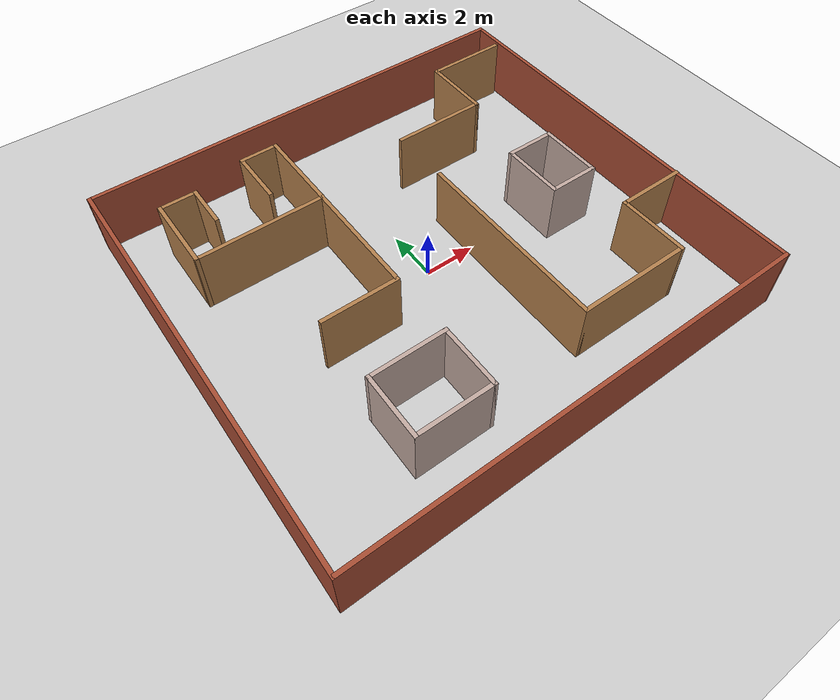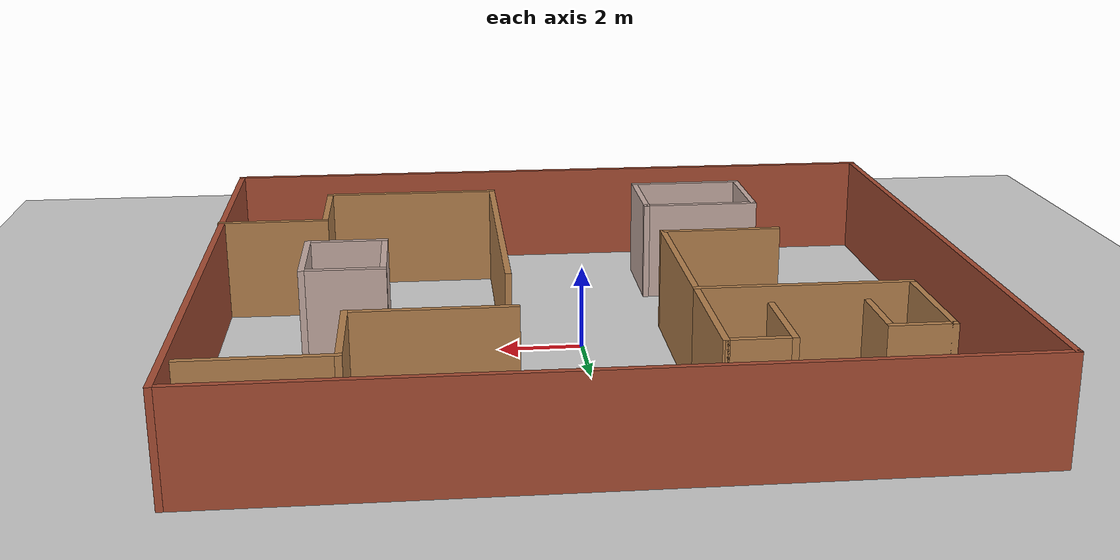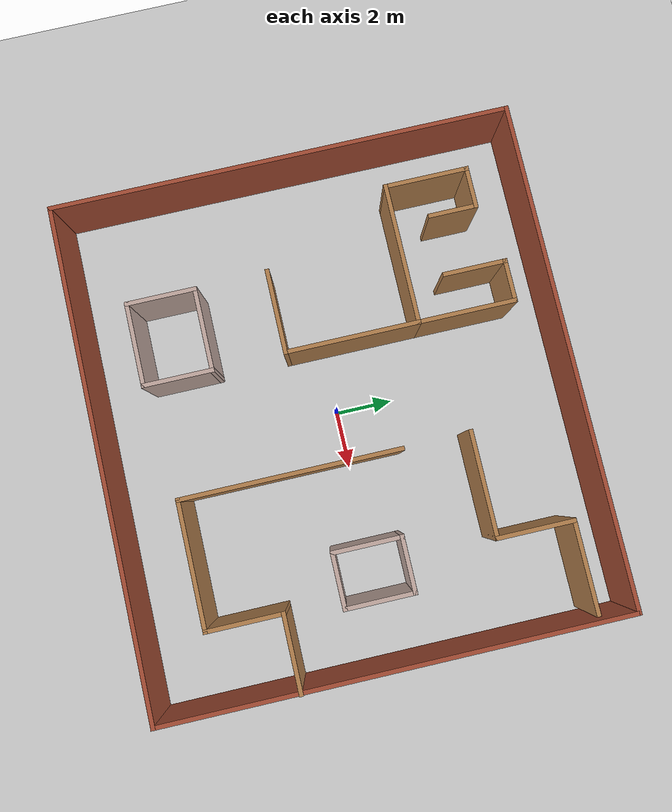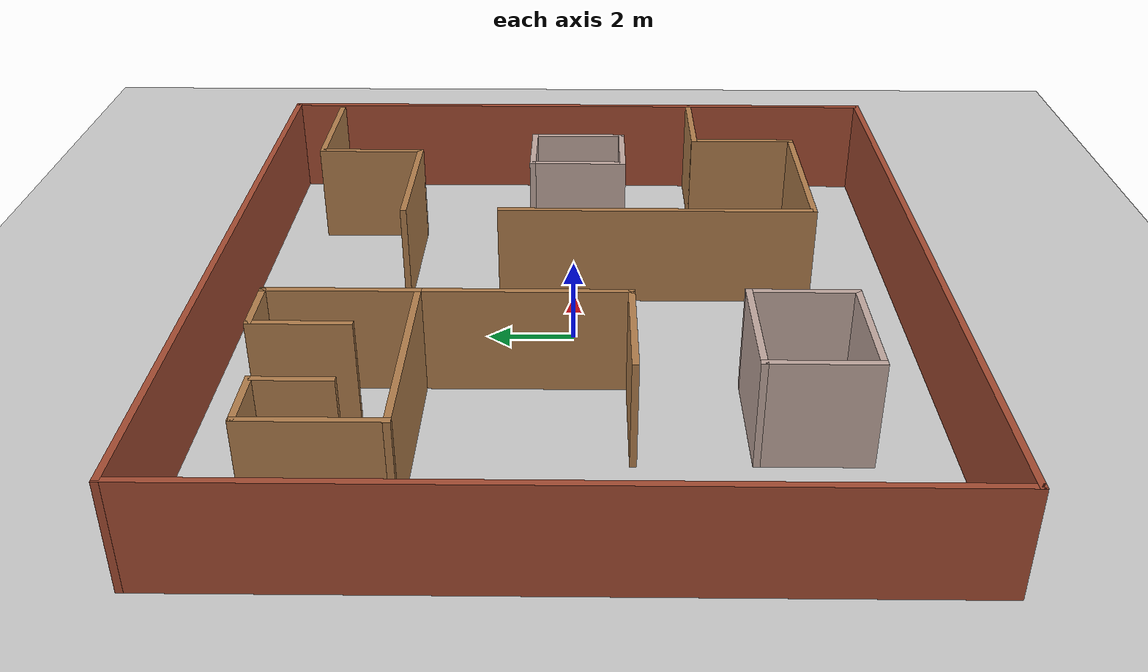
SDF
<?xml version="1.0"?>
<sdf version="1.7">
  <world name="default">

    <!-- Physics Settings (optional) -->
    <physics type="ode">
      <gravity>0 0 -9.8</gravity>
      <max_step_size>0.001</max_step_size>
    </physics>

    <!-- Ground Plane -->
    <model name="ground_plane">
      <pose>0 0 0 0 0 0</pose>
      <link name="link">
        <collision name="collision">
          <geometry>
            <plane>
              <normal>0 0 1</normal>
              <size>100 100</size>
            </plane>
          </geometry>
        </collision>
        <visual name="visual">
          <geometry>
            <plane>
              <normal>0 0 1</normal>
              <size>100 100</size>
            </plane>
          </geometry>
          <material>
            <ambient>0.3 0.3 0.3 1.0</ambient>
            <diffuse>0.8 0.8 0.8 1.0</diffuse>
            <specular>0.0 0.0 0.0 1.0</specular>
          </material>
        </visual>
      </link>
    </model>

    <!-- Add your building model -->
    <include>
      <uri>model://map4</uri> <!-- Reference to the model in Gazebo's model database -->
      <pose>0 0 0 0 0 0</pose> <!-- Position of the model in the world -->
    </include>

  </world>
</sdf>

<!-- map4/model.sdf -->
<sdf version='1.7'>
  <model name='map4'>
    <pose>-0.350802 -0.697163 0 0 -0 0</pose>
    <link name='Wall_10'>
      <collision name='Wall_10_Collision'>
        <geometry>
          <box>
            <size>16.25 0.15 2.5</size>
          </box>
        </geometry>
        <pose>0 0 1.25 0 -0 0</pose>
      </collision>
      <visual name='Wall_10_Visual'>
        <pose>0 0 1.25 0 -0 0</pose>
        <geometry>
          <box>
            <size>16.25 0.15 2.5</size>
          </box>
        </geometry>
        <material>
          <script>
            <uri>file://media/materials/scripts/gazebo.material</uri>
            <name>Gazebo/Bricks</name>
          </script>
          <ambient>1 1 1 1</ambient>
        </material>
        <meta>
          <layer>0</layer>
        </meta>
      </visual>
      <pose>8.78502 0 0 0 -0 1.5708</pose>
    </link>
    <link name='Wall_11'>
      <collision name='Wall_11_Collision'>
        <geometry>
          <box>
            <size>17.75 0.15 2.5</size>
          </box>
        </geometry>
        <pose>0 0 1.25 0 -0 0</pose>
      </collision>
      <visual name='Wall_11_Visual'>
        <pose>0 0 1.25 0 -0 0</pose>
        <geometry>
          <box>
            <size>17.75 0.15 2.5</size>
          </box>
        </geometry>
        <material>
          <script>
            <uri>file://media/materials/scripts/gazebo.material</uri>
            <name>Gazebo/Bricks</name>
          </script>
          <ambient>1 1 1 1</ambient>
        </material>
        <meta>
          <layer>0</layer>
        </meta>
      </visual>
      <pose>-0.014976 8.05 0 0 -0 3.14159</pose>
    </link>
    <link name='Wall_13'>
      <collision name='Wall_13_Collision'>
        <geometry>
          <box>
            <size>4.75 0.15 2.5</size>
          </box>
        </geometry>
        <pose>0 0 1.25 0 -0 0</pose>
      </collision>
      <visual name='Wall_13_Visual'>
        <pose>0 0 1.25 0 -0 0</pose>
        <geometry>
          <box>
            <size>4.75 0.15 2.5</size>
          </box>
        </geometry>
        <material>
          <script>
            <uri>file://media/materials/scripts/gazebo.material</uri>
            <name>Gazebo/Wood</name>
          </script>
          <ambient>1 1 1 1</ambient>
        </material>
        <meta>
          <layer>0</layer>
        </meta>
      </visual>
      <pose>-2.15975 1.02508 0 0 -0 -1.5708</pose>
    </link>
    <link name='Wall_14'>
      <collision name='Wall_14_Collision'>
        <geometry>
          <box>
            <size>3 0.15 2.5</size>
          </box>
        </geometry>
        <pose>0 0 1.25 0 -0 0</pose>
      </collision>
      <visual name='Wall_14_Visual'>
        <pose>0 0 1.25 0 -0 0</pose>
        <geometry>
          <box>
            <size>3 0.15 2.5</size>
          </box>
        </geometry>
        <material>
          <script>
            <uri>file://media/materials/scripts/gazebo.material</uri>
            <name>Gazebo/Wood</name>
          </script>
          <ambient>1 1 1 1</ambient>
        </material>
        <meta>
          <layer>0</layer>
        </meta>
      </visual>
      <pose>-3.58475 -1.27492 0 0 -0 3.14159</pose>
    </link>
    <link name='Wall_16'>
      <collision name='Wall_16_Collision'>
        <geometry>
          <box>
            <size>7.75 0.15 2.5</size>
          </box>
        </geometry>
        <pose>0 0 1.25 0 -0 0</pose>
      </collision>
      <visual name='Wall_16_Visual'>
        <pose>0 0 1.25 0 -0 0</pose>
        <geometry>
          <box>
            <size>7.75 0.15 2.5</size>
          </box>
        </geometry>
        <material>
          <script>
            <uri>file://media/materials/scripts/gazebo.material</uri>
            <name>Gazebo/Wood</name>
          </script>
          <ambient>1 1 1 1</ambient>
        </material>
        <meta>
          <layer>0</layer>
        </meta>
      </visual>
      <pose>1.86498 -2.00154 0 0 -0 -1.5708</pose>
    </link>
    <link name='Wall_17'>
      <collision name='Wall_17_Collision'>
        <geometry>
          <box>
            <size>4.5 0.15 2.5</size>
          </box>
        </geometry>
        <pose>0 0 1.25 0 -0 0</pose>
      </collision>
      <visual name='Wall_17_Visual'>
        <pose>0 0 1.25 0 -0 0</pose>
        <geometry>
          <box>
            <size>4.5 0.15 2.5</size>
          </box>
        </geometry>
        <material>
          <script>
            <uri>file://media/materials/scripts/gazebo.material</uri>
            <name>Gazebo/Wood</name>
          </script>
          <ambient>1 1 1 1</ambient>
        </material>
        <meta>
          <layer>0</layer>
        </meta>
      </visual>
      <pose>4.03998 -5.80154 0 0 -0 0</pose>
    </link>
    <link name='Wall_18'>
      <collision name='Wall_18_Collision'>
        <geometry>
          <box>
            <size>2.75 0.15 2.5</size>
          </box>
        </geometry>
        <pose>0 0 1.25 0 -0 0</pose>
      </collision>
      <visual name='Wall_18_Visual'>
        <pose>0 0 1.25 0 -0 0</pose>
        <geometry>
          <box>
            <size>2.75 0.15 2.5</size>
          </box>
        </geometry>
        <material>
          <script>
            <uri>file://media/materials/scripts/gazebo.material</uri>
            <name>Gazebo/Wood</name>
          </script>
          <ambient>1 1 1 1</ambient>
        </material>
        <meta>
          <layer>0</layer>
        </meta>
      </visual>
      <pose>6.21498 -4.50154 0 0 -0 1.5708</pose>
    </link>
    <link name='Wall_19'>
      <collision name='Wall_19_Collision'>
        <geometry>
          <box>
            <size>2.75 0.15 2.5</size>
          </box>
        </geometry>
        <pose>0 0 1.25 0 -0 0</pose>
      </collision>
      <visual name='Wall_19_Visual'>
        <pose>0 0 1.25 0 -0 0</pose>
        <geometry>
          <box>
            <size>2.75 0.15 2.5</size>
          </box>
        </geometry>
        <material>
          <script>
            <uri>file://media/materials/scripts/gazebo.material</uri>
            <name>Gazebo/Wood</name>
          </script>
          <ambient>1 1 1 1</ambient>
        </material>
        <meta>
          <layer>0</layer>
        </meta>
      </visual>
      <pose>7.51498 -3.20154 0 0 -0 0</pose>
    </link>
    <link name='Wall_21'>
      <collision name='Wall_21_Collision'>
        <geometry>
          <box>
            <size>3 0.15 2.5</size>
          </box>
        </geometry>
        <pose>0 0 1.25 0 -0 0</pose>
      </collision>
      <visual name='Wall_21_Visual'>
        <pose>0 0 1.25 0 -0 0</pose>
        <geometry>
          <box>
            <size>3 0.15 2.5</size>
          </box>
        </geometry>
        <material>
          <script>
            <uri>file://media/materials/scripts/gazebo.material</uri>
            <name>Gazebo/Grey</name>
          </script>
          <ambient>0.760784 0.662745 0.627451 1</ambient>
        </material>
        <meta>
          <layer>0</layer>
        </meta>
      </visual>
      <pose>-3.53849 -3.79915 0 0 -0 3.14159</pose>
    </link>
    <link name='Wall_22'>
      <collision name='Wall_22_Collision'>
        <geometry>
          <box>
            <size>2.5 0.15 2.5</size>
          </box>
        </geometry>
        <pose>0 0 1.25 0 -0 0</pose>
      </collision>
      <visual name='Wall_22_Visual'>
        <pose>0 0 1.25 0 -0 0</pose>
        <geometry>
          <box>
            <size>2.5 0.15 2.5</size>
          </box>
        </geometry>
        <material>
          <script>
            <uri>file://media/materials/scripts/gazebo.material</uri>
            <name>Gazebo/Grey</name>
          </script>
          <ambient>0.760784 0.662745 0.627451 1</ambient>
        </material>
        <meta>
          <layer>0</layer>
        </meta>
      </visual>
      <pose>-4.96349 -4.97415 0 0 -0 -1.5708</pose>
    </link>
    <link name='Wall_23'>
      <collision name='Wall_23_Collision'>
        <geometry>
          <box>
            <size>3 0.15 2.5</size>
          </box>
        </geometry>
        <pose>0 0 1.25 0 -0 0</pose>
      </collision>
      <visual name='Wall_23_Visual'>
        <pose>0 0 1.25 0 -0 0</pose>
        <geometry>
          <box>
            <size>3 0.15 2.5</size>
          </box>
        </geometry>
        <material>
          <script>
            <uri>file://media/materials/scripts/gazebo.material</uri>
            <name>Gazebo/Grey</name>
          </script>
          <ambient>0.760784 0.662745 0.627451 1</ambient>
        </material>
        <meta>
          <layer>0</layer>
        </meta>
      </visual>
      <pose>-3.53849 -6.14915 0 0 -0 0</pose>
    </link>
    <link name='Wall_24'>
      <collision name='Wall_24_Collision'>
        <geometry>
          <box>
            <size>2.5 0.15 2.5</size>
          </box>
        </geometry>
        <pose>0 0 1.25 0 -0 0</pose>
      </collision>
      <visual name='Wall_24_Visual'>
        <pose>0 0 1.25 0 -0 0</pose>
        <geometry>
          <box>
            <size>2.5 0.15 2.5</size>
          </box>
        </geometry>
        <material>
          <script>
            <uri>file://media/materials/scripts/gazebo.material</uri>
            <name>Gazebo/Grey</name>
          </script>
          <ambient>0.760784 0.662745 0.627451 1</ambient>
        </material>
        <meta>
          <layer>0</layer>
        </meta>
      </visual>
      <pose>-2.11349 -4.97415 0 0 -0 1.5708</pose>
    </link>
    <link name='Wall_26'>
      <collision name='Wall_26_Collision'>
        <geometry>
          <box>
            <size>5 0.15 2.5</size>
          </box>
        </geometry>
        <pose>0 0 1.25 0 -0 0</pose>
      </collision>
      <visual name='Wall_26_Visual'>
        <pose>0 0 1.25 0 -0 0</pose>
        <geometry>
          <box>
            <size>5 0.15 2.5</size>
          </box>
        </geometry>
        <material>
          <script>
            <uri>file://media/materials/scripts/gazebo.material</uri>
            <name>Gazebo/Wood</name>
          </script>
          <ambient>1 1 1 1</ambient>
        </material>
        <meta>
          <layer>0</layer>
        </meta>
      </visual>
      <pose>-4.58475 3.32508 0 0 -0 3.14159</pose>
    </link>
    <link name='Wall_27'>
      <collision name='Wall_27_Collision'>
        <geometry>
          <box>
            <size>3 0.15 2.5</size>
          </box>
        </geometry>
        <pose>0 0 1.25 0 -0 0</pose>
      </collision>
      <visual name='Wall_27_Visual'>
        <pose>0 0 1.25 0 -0 0</pose>
        <geometry>
          <box>
            <size>3 0.15 2.5</size>
          </box>
        </geometry>
        <material>
          <script>
            <uri>file://media/materials/scripts/gazebo.material</uri>
            <name>Gazebo/Wood</name>
          </script>
          <ambient>1 1 1 1</ambient>
        </material>
        <meta>
          <layer>0</layer>
        </meta>
      </visual>
      <pose>-7.00975 4.75008 0 0 -0 1.5708</pose>
    </link>
    <link name='Wall_28'>
      <collision name='Wall_28_Collision'>
        <geometry>
          <box>
            <size>1.5 0.15 2.5</size>
          </box>
        </geometry>
        <pose>0 0 1.25 0 -0 0</pose>
      </collision>
      <visual name='Wall_28_Visual'>
        <pose>0 0 1.25 0 -0 0</pose>
        <geometry>
          <box>
            <size>1.5 0.15 2.5</size>
          </box>
        </geometry>
        <material>
          <script>
            <uri>file://media/materials/scripts/gazebo.material</uri>
            <name>Gazebo/Wood</name>
          </script>
          <ambient>1 1 1 1</ambient>
        </material>
        <meta>
          <layer>0</layer>
        </meta>
      </visual>
      <pose>-6.33475 6.17508 0 0 -0 0</pose>
    </link>
    <link name='Wall_29'>
      <collision name='Wall_29_Collision'>
        <geometry>
          <box>
            <size>1.75 0.15 2.5</size>
          </box>
        </geometry>
        <pose>0 0 1.25 0 -0 0</pose>
      </collision>
      <visual name='Wall_29_Visual'>
        <pose>0 0 1.25 0 -0 0</pose>
        <geometry>
          <box>
            <size>1.75 0.15 2.5</size>
          </box>
        </geometry>
        <material>
          <script>
            <uri>file://media/materials/scripts/gazebo.material</uri>
            <name>Gazebo/Wood</name>
          </script>
          <ambient>1 1 1 1</ambient>
        </material>
        <meta>
          <layer>0</layer>
        </meta>
      </visual>
      <pose>-5.65975 5.37508 0 0 -0 -1.5708</pose>
    </link>
    <link name='Wall_31'>
      <collision name='Wall_31_Collision'>
        <geometry>
          <box>
            <size>2.25 0.15 2.5</size>
          </box>
        </geometry>
        <pose>0 0 1.25 0 -0 0</pose>
      </collision>
      <visual name='Wall_31_Visual'>
        <pose>0 0 1.25 0 -0 0</pose>
        <geometry>
          <box>
            <size>2.25 0.15 2.5</size>
          </box>
        </geometry>
        <material>
          <script>
            <uri>file://media/materials/scripts/gazebo.material</uri>
            <name>Gazebo/Wood</name>
          </script>
          <ambient>1 1 1 1</ambient>
        </material>
        <meta>
          <layer>0</layer>
        </meta>
      </visual>
      <pose>-3.55975 5.62508 0 0 -0 1.5708</pose>
    </link>
    <link name='Wall_32'>
      <collision name='Wall_32_Collision'>
        <geometry>
          <box>
            <size>1.5 0.15 2.5</size>
          </box>
        </geometry>
        <pose>0 0 1.25 0 -0 0</pose>
      </collision>
      <visual name='Wall_32_Visual'>
        <pose>0 0 1.25 0 -0 0</pose>
        <geometry>
          <box>
            <size>1.5 0.15 2.5</size>
          </box>
        </geometry>
        <material>
          <script>
            <uri>file://media/materials/scripts/gazebo.material</uri>
            <name>Gazebo/Wood</name>
          </script>
          <ambient>1 1 1 1</ambient>
        </material>
        <meta>
          <layer>0</layer>
        </meta>
      </visual>
      <pose>-2.88475 6.67508 0 0 -0 0</pose>
    </link>
    <link name='Wall_34'>
      <collision name='Wall_34_Collision'>
        <geometry>
          <box>
            <size>3.5 0.15 2.5</size>
          </box>
        </geometry>
        <pose>0 0 1.25 0 -0 0</pose>
      </collision>
      <visual name='Wall_34_Visual'>
        <pose>0 0 1.25 0 -0 0</pose>
        <geometry>
          <box>
            <size>3.5 0.15 2.5</size>
          </box>
        </geometry>
        <material>
          <script>
            <uri>file://media/materials/scripts/gazebo.material</uri>
            <name>Gazebo/Wood</name>
          </script>
          <ambient>1 1 1 1</ambient>
        </material>
        <meta>
          <layer>0</layer>
        </meta>
      </visual>
      <pose>-2.15975 5.00008 0 0 -0 1.5708</pose>
    </link>
    <link name='Wall_37'>
      <collision name='Wall_37_Collision'>
        <geometry>
          <box>
            <size>3.75 0.15 2.5</size>
          </box>
        </geometry>
        <pose>0 0 1.25 0 -0 0</pose>
      </collision>
      <visual name='Wall_37_Visual'>
        <pose>0 0 1.25 0 -0 0</pose>
        <geometry>
          <box>
            <size>3.75 0.15 2.5</size>
          </box>
        </geometry>
        <material>
          <script>
            <uri>file://media/materials/scripts/gazebo.material</uri>
            <name>Gazebo/Wood</name>
          </script>
          <ambient>1 1 1 1</ambient>
        </material>
        <meta>
          <layer>0</layer>
        </meta>
      </visual>
      <pose>3.62514 4.15043 0 0 -0 0</pose>
    </link>
    <link name='Wall_38'>
      <collision name='Wall_38_Collision'>
        <geometry>
          <box>
            <size>2.75 0.15 2.5</size>
          </box>
        </geometry>
        <pose>0 0 1.25 0 -0 0</pose>
      </collision>
      <visual name='Wall_38_Visual'>
        <pose>0 0 1.25 0 -0 0</pose>
        <geometry>
          <box>
            <size>2.75 0.15 2.5</size>
          </box>
        </geometry>
        <material>
          <script>
            <uri>file://media/materials/scripts/gazebo.material</uri>
            <name>Gazebo/Wood</name>
          </script>
          <ambient>1 1 1 1</ambient>
        </material>
        <meta>
          <layer>0</layer>
        </meta>
      </visual>
      <pose>5.42514 5.45043 0 0 -0 1.5708</pose>
    </link>
    <link name='Wall_39'>
      <collision name='Wall_39_Collision'>
        <geometry>
          <box>
            <size>3.25 0.15 2.5</size>
          </box>
        </geometry>
        <pose>0 0 1.25 0 -0 0</pose>
      </collision>
      <visual name='Wall_39_Visual'>
        <pose>0 0 1.25 0 -0 0</pose>
        <geometry>
          <box>
            <size>3.25 0.15 2.5</size>
          </box>
        </geometry>
        <material>
          <script>
            <uri>file://media/materials/scripts/gazebo.material</uri>
            <name>Gazebo/Wood</name>
          </script>
          <ambient>1 1 1 1</ambient>
        </material>
        <meta>
          <layer>0</layer>
        </meta>
      </visual>
      <pose>6.97514 6.75042 0 0 -0 0</pose>
    </link>
    <link name='Wall_41'>
      <collision name='Wall_41_Collision'>
        <geometry>
          <box>
            <size>2.5 0.15 2.5</size>
          </box>
        </geometry>
        <pose>0 0 1.25 0 -0 0</pose>
      </collision>
      <visual name='Wall_41_Visual'>
        <pose>0 0 1.25 0 -0 0</pose>
        <geometry>
          <box>
            <size>2.5 0.15 2.5</size>
          </box>
        </geometry>
        <material>
          <script>
            <uri>file://media/materials/scripts/gazebo.material</uri>
            <name>Gazebo/Grey</name>
          </script>
          <ambient>0.760784 0.662745 0.627451 1</ambient>
        </material>
        <meta>
          <layer>0</layer>
        </meta>
      </visual>
      <pose>4.67625 -0.055047 0 0 -0 -1.5708</pose>
    </link>
    <link name='Wall_42'>
      <collision name='Wall_42_Collision'>
        <geometry>
          <box>
            <size>2 0.15 2.5</size>
          </box>
        </geometry>
        <pose>0 0 1.25 0 -0 0</pose>
      </collision>
      <visual name='Wall_42_Visual'>
        <pose>0 0 1.25 0 -0 0</pose>
        <geometry>
          <box>
            <size>2 0.15 2.5</size>
          </box>
        </geometry>
        <material>
          <script>
            <uri>file://media/materials/scripts/gazebo.material</uri>
            <name>Gazebo/Grey</name>
          </script>
          <ambient>0.760784 0.662745 0.627451 1</ambient>
        </material>
        <meta>
          <layer>0</layer>
        </meta>
      </visual>
      <pose>5.60125 -1.23005 0 0 -0 0</pose>
    </link>
    <link name='Wall_43'>
      <collision name='Wall_43_Collision'>
        <geometry>
          <box>
            <size>2.5 0.15 2.5</size>
          </box>
        </geometry>
        <pose>0 0 1.25 0 -0 0</pose>
      </collision>
      <visual name='Wall_43_Visual'>
        <pose>0 0 1.25 0 -0 0</pose>
        <geometry>
          <box>
            <size>2.5 0.15 2.5</size>
          </box>
        </geometry>
        <material>
          <script>
            <uri>file://media/materials/scripts/gazebo.material</uri>
            <name>Gazebo/Grey</name>
          </script>
          <ambient>0.760784 0.662745 0.627451 1</ambient>
        </material>
        <meta>
          <layer>0</layer>
        </meta>
      </visual>
      <pose>6.52625 -0.055047 0 0 -0 1.5708</pose>
    </link>
    <link name='Wall_44'>
      <collision name='Wall_44_Collision'>
        <geometry>
          <box>
            <size>2 0.15 2.5</size>
          </box>
        </geometry>
        <pose>0 0 1.25 0 -0 0</pose>
      </collision>
      <visual name='Wall_44_Visual'>
        <pose>0 0 1.25 0 -0 0</pose>
        <geometry>
          <box>
            <size>2 0.15 2.5</size>
          </box>
        </geometry>
        <material>
          <script>
            <uri>file://media/materials/scripts/gazebo.material</uri>
            <name>Gazebo/Grey</name>
          </script>
          <ambient>0.760784 0.662745 0.627451 1</ambient>
        </material>
        <meta>
          <layer>0</layer>
        </meta>
      </visual>
      <pose>5.60125 1.11995 0 0 -0 3.14159</pose>
    </link>
    <link name='Wall_8'>
      <collision name='Wall_8_Collision'>
        <geometry>
          <box>
            <size>16.25 0.15 2.5</size>
          </box>
        </geometry>
        <pose>0 0 1.25 0 -0 0</pose>
      </collision>
      <visual name='Wall_8_Visual'>
        <pose>0 0 1.25 0 -0 0</pose>
        <geometry>
          <box>
            <size>16.25 0.15 2.5</size>
          </box>
        </geometry>
        <material>
          <script>
            <uri>file://media/materials/scripts/gazebo.material</uri>
            <name>Gazebo/Bricks</name>
          </script>
          <ambient>1 1 1 1</ambient>
        </material>
        <meta>
          <layer>0</layer>
        </meta>
      </visual>
      <pose>-8.81498 0 0 0 -0 -1.5708</pose>
    </link>
    <link name='Wall_9'>
      <collision name='Wall_9_Collision'>
        <geometry>
          <box>
            <size>17.75 0.15 2.5</size>
          </box>
        </geometry>
        <pose>0 0 1.25 0 -0 0</pose>
      </collision>
      <visual name='Wall_9_Visual'>
        <pose>0 0 1.25 0 -0 0</pose>
        <geometry>
          <box>
            <size>17.75 0.15 2.5</size>
          </box>
        </geometry>
        <material>
          <script>
            <uri>file://media/materials/scripts/gazebo.material</uri>
            <name>Gazebo/Bricks</name>
          </script>
          <ambient>1 1 1 1</ambient>
        </material>
        <meta>
          <layer>0</layer>
        </meta>
      </visual>
      <pose>-0.014976 -8.05 0 0 -0 0</pose>
    </link>
    <static>1</static>
  </model>
</sdf>
